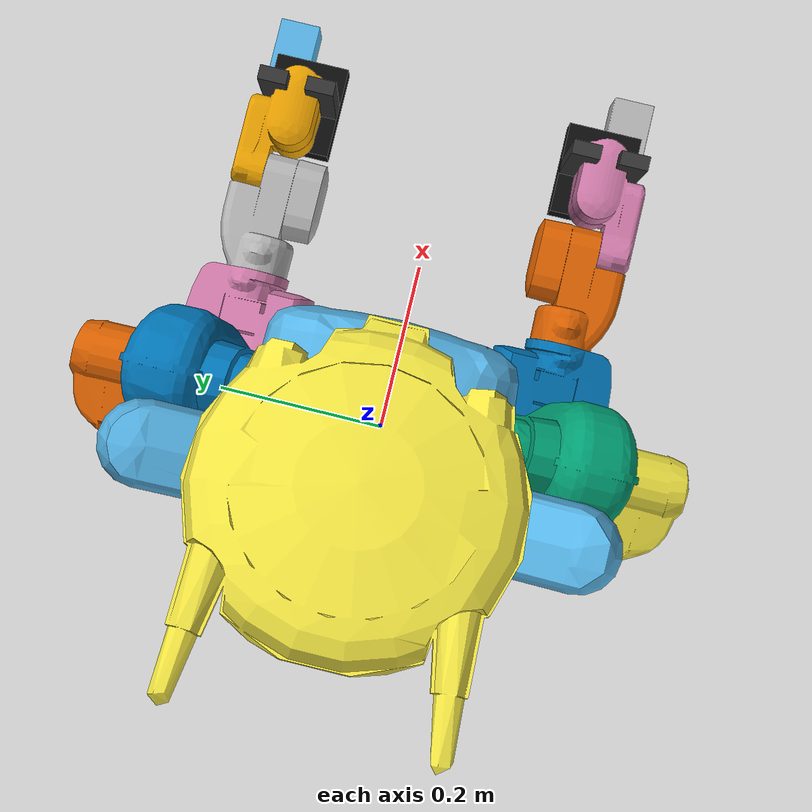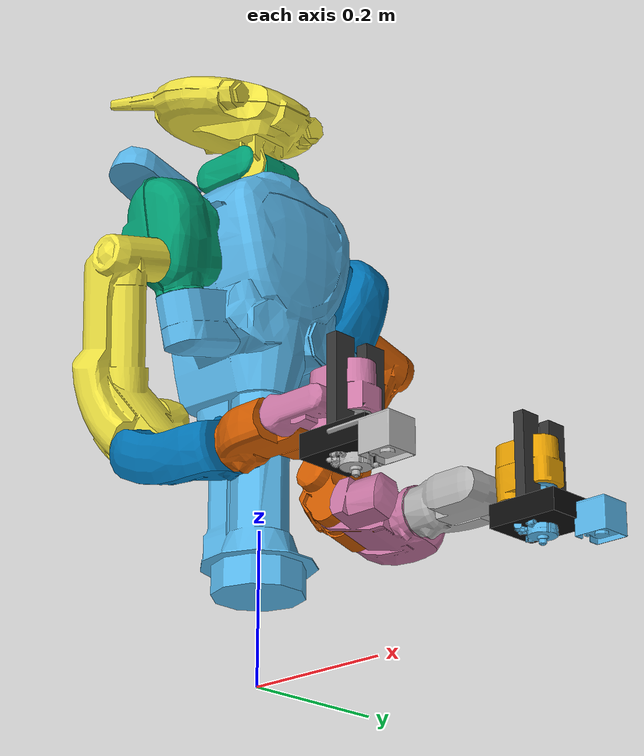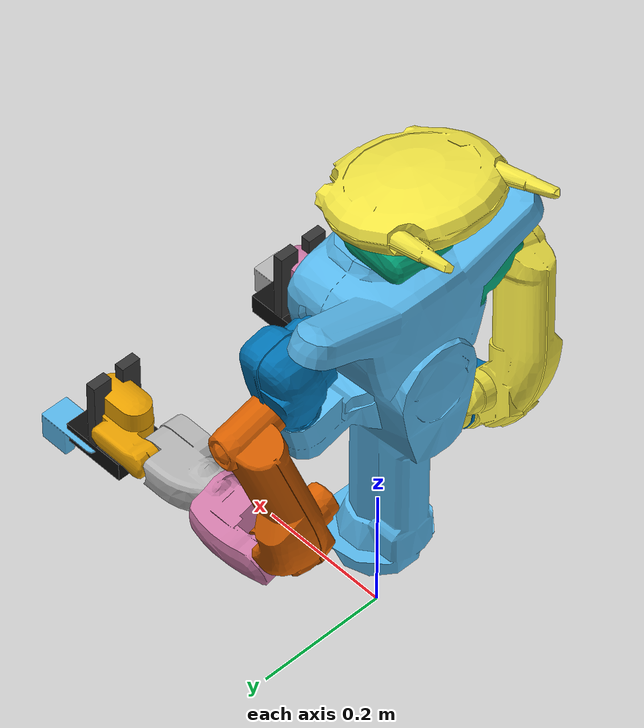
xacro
<?xml version="1.0"?>
<robot name="FillieOpen"
       xmlns:xacro="http://www.ros.org/wiki/xacro">

  <xacro:include filename="$(find nextage_fillie_open_description)/urdf/FillieOpen.urdf" />
  <xacro:include filename="$(find nextage_fillie_open_description)/urdf/nextage_fillie_open_gz_camera.xacro" />
  <xacro:include filename="$(find nextage_fillie_open_description)/urdf/robotiq_2f_140_gripper.xacro" />

  <!-- Add Robotiq 2F-140 Gripper to right arm -->
  <xacro:robotiq_gripper prefix="right" parent="RARM_JOINT5_Link">
    <origin xyz="0.0 0.0 0.0" rpy="0 0 0"/>
  </xacro:robotiq_gripper>

  <!-- Add Robotiq 2F-140 Gripper to left arm -->
  <xacro:robotiq_gripper prefix="left" parent="LARM_JOINT5_Link">
    <origin xyz="0.0 0.0 0.0" rpy="0 0 0"/>
  </xacro:robotiq_gripper>

</robot>

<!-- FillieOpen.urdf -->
<robot name="NEXTAGE"
			 xmlns:xi="http://www.w3.org/2001/xinclude"
			 xmlns:gazebo="http://playerstage.sourceforge.net/gazebo/xmlschema/#gz"
			 xmlns:model="http://playerstage.sourceforge.net/gazebo/xmlschema/#model"
			 xmlns:sensor="http://playerstage.sourceforge.net/gazebo/xmlschema/#sensor"
			 xmlns:body="http://playerstage.sourceforge.net/gazebo/xmlschema/#body"
			 xmlns:geom="http://playerstage.sourceforge.net/gazebo/xmlschema/#geom"
			 xmlns:joint="http://playerstage.sourceforge.net/gazebo/xmlschema/#joint"
			 xmlns:interface="http://playerstage.sourceforge.net/gazebo/xmlschema/#interface"
			 xmlns:rendering="http://playerstage.sourceforge.net/gazebo/xmlschema/#rendering"
			 xmlns:renderable="http://playerstage.sourceforge.net/gazebo/xmlschema/#renderable"
			 xmlns:controller="http://playerstage.sourceforge.net/gazebo/xmlschema/#controller"
			 xmlns:physics="http://playerstage.sourceforge.net/gazebo/xmlschema/#physics"
			 xmlns:xacro="http://www.ros.org/wiki/xacro">
	<xacro:include filename="$(find nextage_fillie_open_description)/urdf/materials.urdf.xacro" />

	<!-- Used for fixing robot to Gazebo 'base_link' -->
	<link name="world"/>
	<joint name="fixed" type="fixed">
		 <parent link="world"/>
		 <child link="CHEST_JOINT0_Link"/>
	</joint>

	<link name="CHEST_JOINT0_Link">
		<visual>
			<origin xyz="0 0 0" rpy="0 0 0"/>
			<geometry>
				<mesh filename="file://$(find nextage_fillie_open_description)/urdf/meshes/visual/CHEST_JOINT0_Link_mesh.obj"/>
			</geometry>
		</visual>
		<collision>
			<origin xyz="0 0 0" rpy="0 0 0"/>
			<geometry>
				<mesh filename="file://$(find nextage_fillie_open_description)/urdf/meshes/CHEST_JOINT0_Link_mesh.dae"/>
			</geometry>
		</collision>
			 <inertial>
			<mass value="5.719" />
			<origin xyz="0 0 0" rpy="0 -0 0"/>
			<inertia ixx="0.0639575" ixy="-0.00022833" ixz="0.00011172" iyy="0.0310845" iyz="6.48e-05" izz="0.0501107"/>
		</inertial>
	</link>

	<link name="HEAD_JOINT0_Link">
		<visual>
			<origin xyz="0 0 0" rpy="0 0 0"/>
			<geometry>
				<mesh filename="file://$(find nextage_fillie_open_description)/urdf/meshes/visual/HEAD_JOINT0_Link_mesh.obj"/>
			</geometry>
		</visual>
		<collision>
			<origin xyz="0 0 0" rpy="0 0 0"/>
			<geometry>
				<mesh filename="file://$(find nextage_fillie_open_description)/urdf/meshes/HEAD_JOINT0_Link_mesh.dae"/>
			</geometry>
		</collision>
		 <inertial>
			<mass value="0.317929" />
			<origin xyz="-2.292e-05 0.00547848 -0.00784016" rpy="0 -0 0"/>
			<inertia ixx="0.00027682" ixy="3e-08" ixz="-3.3e-07" iyy="0.00013009" iyz="-1.092e-05" izz="0.00020954"/>
		</inertial>
	</link>

	<link name="HEAD_JOINT1_Link">
		<visual>
			<origin xyz="0 0 0" rpy="0 0 0"/>
			<geometry>
				<mesh filename="file://$(find nextage_fillie_open_description)/urdf/meshes/visual/HEAD_JOINT1_Link_mesh.obj"/>
			</geometry>
		</visual>
		<collision>
			<origin xyz="0 0 0" rpy="0 0 0"/>
			<geometry>
				<mesh filename="file://$(find nextage_fillie_open_description)/urdf/meshes/HEAD_JOINT1_Link_mesh.dae"/>
			</geometry>
		</collision>
		<inertial>
			<mass value="0.0808593" />
			<inertia ixx="1e-3" ixy="0" ixz="0" iyy="1e-3" iyz="0" izz="1e-3"/>
		</inertial>
	</link>

	<link name="LARM_JOINT0_Link">
		<visual>
			<origin xyz="0 0 0" rpy="0 0 0"/>
			<geometry>
				<mesh filename="file://$(find nextage_fillie_open_description)/urdf/meshes/visual/LARM_JOINT0_Link_mesh.obj"/>
			</geometry>
		</visual>
		<collision>
			<origin xyz="0 0 0" rpy="0 0 0"/>
			<geometry>
				<mesh filename="file://$(find nextage_fillie_open_description)/urdf/meshes/LARM_JOINT0_Link_mesh.dae"/>
			</geometry>
		</collision>
			<inertial>
			<mass value="1.32626" />
			<origin xyz="-0.00226388 -0.00521383 0.0156081" rpy="0 -0 0"/>
			<inertia ixx="0.00207537" ixy="0.00011276" ixz="8.927e-05" iyy="0.00240295" iyz="-4.57e-05" izz="0.00141912"/>
		</inertial>
	</link>

	<link name="LARM_JOINT1_Link">
		<visual>
			<origin xyz="0 0 0" rpy="0 0 0"/>
			<geometry>
				<mesh filename="file://$(find nextage_fillie_open_description)/urdf/meshes/visual/LARM_JOINT1_Link_mesh.obj"/>
			</geometry>
		</visual>
		<collision>
			<origin xyz="0 0 0" rpy="0 0 0"/>
			<geometry>
				<mesh filename="file://$(find nextage_fillie_open_description)/urdf/meshes/LARM_JOINT1_Link_mesh.dae"/>
			</geometry>
		</collision>
		 <inertial>
			<mass value="1.14898" />
			<origin xyz="-5.236e-05 0.0583134 -0.107061" rpy="0 -0 0"/>
			<inertia ixx="0.0154168" ixy="9.95417e-07" ixz="3.38147e-06" iyy="0.0147117" iyz="0.00213719" izz="0.0012658"/>
		</inertial>
	</link>

	<link name="LARM_JOINT2_Link">
		<visual>
			<origin xyz="0 0 0" rpy="0 0 0"/>
			<geometry>
				<mesh filename="file://$(find nextage_fillie_open_description)/urdf/meshes/visual/LARM_JOINT2_Link_mesh.obj"/>
			</geometry>
		</visual>
		<collision>
			<origin xyz="0 0 0" rpy="0 0 0"/>
			<geometry>
				<mesh filename="file://$(find nextage_fillie_open_description)/urdf/meshes/LARM_JOINT2_Link_mesh.dae"/>
			</geometry>
		</collision>
			<inertial>
			<mass value="0.577518" />
			<origin xyz="-2.254e-05 0.00167107 -0.0715116" rpy="0 -0 0"/>
			<inertia ixx="0.00143966" ixy="-3e-07" ixz="1.2e-06" iyy="0.00141763" iyz="-7.596e-05" izz="0.0001972"/>
		</inertial>
	</link>

	<link name="LARM_JOINT3_Link">
		<visual>
			<origin xyz="0 0 0" rpy="0 0 0"/>
			<geometry>
				<mesh filename="file://$(find nextage_fillie_open_description)/urdf/meshes/visual/LARM_JOINT3_Link_mesh.obj"/>
			</geometry>
		</visual>
		<collision>
			<origin xyz="0 0 0" rpy="0 0 0"/>
			<geometry>
				<mesh filename="file://$(find nextage_fillie_open_description)/urdf/meshes/LARM_JOINT3_Link_mesh.dae"/>
			</geometry>
		</collision>
			<inertial>
			<mass value="0.457418" />
			<origin xyz="-1.788e-05 -0.00395812 -0.20273" rpy="0 -0 0"/>
			<inertia ixx="0.00069205" ixy="3e-08" ixz="5.2e-07" iyy="0.00068903" iyz="-1.915e-05" izz="0.00013509"/>
		</inertial>
	</link>

	<link name="LARM_JOINT4_Link">
		<visual>
			<origin xyz="0 0 0" rpy="0 0 0"/>
			<geometry>
				<mesh filename="file://$(find nextage_fillie_open_description)/urdf/meshes/visual/LARM_JOINT4_Link_mesh.obj"/>
			</geometry>
		</visual>
		<collision>
			<origin xyz="0 0 0" rpy="0 0 0"/>
			<geometry>
				<mesh filename="file://$(find nextage_fillie_open_description)/urdf/meshes/LARM_JOINT4_Link_mesh.dae"/>
			</geometry>
		</collision>
		<inertial>
			<mass value="0.418434" />
			<origin xyz="0.00243131 0.00379733 -0.0577036" rpy="0 -0 0"/>
			<inertia ixx="0.00052016" ixy="1.69e-06" ixz="7.9e-06" iyy="0.00050569" iyz="-5.377e-05" izz="0.00014004"/>
		</inertial>
	</link>

	<link name="LARM_JOINT5_Link">
		<visual>
			<origin xyz="0 0 0" rpy="0 0 0"/>
			<geometry>
				<mesh filename="file://$(find nextage_fillie_open_description)/urdf/meshes/visual/LARM_JOINT5_Link_mesh.obj"/>
			</geometry>
		</visual>
		<visual>
			<origin xyz="0 0 0" rpy="0 0 0"/>
			<geometry>
				<mesh filename="file://$(find nextage_fillie_open_description)/urdf/meshes/visual/L_CAM.obj"/>
			</geometry>
		</visual>
		<collision>
			<origin xyz="0 0 0" rpy="0 0 0"/>
			<geometry>
				<mesh filename="file://$(find nextage_fillie_open_description)/urdf/meshes/visual/LARM_JOINT5_Link_mesh.obj"/>
			</geometry>
		</collision>
		<collision>
			<origin xyz="0 0 0" rpy="0 0 0"/>
			<geometry>
				<mesh filename="file://$(find nextage_fillie_open_description)/urdf/meshes/L_CAM.dae"/>
			</geometry>
		</collision>
			<inertial>
			<mass value="1.05156" />
			<origin xyz="-0.048476 -3.2e-06 -0.0388988" rpy="0 -0 0"/>
			<inertia ixx="0.00194072" ixy="1.1e-07" ixz="-0.00042482" iyy="0.00209392" iyz="1.2e-07" izz="0.00035788"/>
		</inertial>
	</link>

	<link name="RARM_JOINT0_Link">
		<visual>
			<origin xyz="0 0 0" rpy="0 0 0"/>
			<geometry>
				<mesh filename="file://$(find nextage_fillie_open_description)/urdf/meshes/visual/RARM_JOINT0_Link_mesh.obj"/>
			</geometry>
		</visual>
		<collision>
			<origin xyz="0 0 0" rpy="0 0 0"/>
			<geometry>
				<mesh filename="file://$(find nextage_fillie_open_description)/urdf/meshes/RARM_JOINT0_Link_mesh.dae"/>
			</geometry>
		</collision>
			 <inertial>
			<mass value="1.32626" />
			<origin xyz="-0.00226388 0.00521383 0.0156081" rpy="0 -0 0"/>
			<inertia ixx="0.00207537" ixy="-0.00011276" ixz="8.927e-05" iyy="0.00240295" iyz="4.57e-05" izz="0.00141912"/>
		</inertial>
	</link>

	<link name="RARM_JOINT1_Link">
		<visual>
			<origin xyz="0 0 0" rpy="0 0 0"/>
			<geometry>
				<mesh filename="file://$(find nextage_fillie_open_description)/urdf/meshes/visual/RARM_JOINT1_Link_mesh.obj"/>
			</geometry>
		</visual>
		<collision>
			<origin xyz="0 0 0" rpy="0 0 0"/>
			<geometry>
				<mesh filename="file://$(find nextage_fillie_open_description)/urdf/meshes/RARM_JOINT1_Link_mesh.dae"/>
			</geometry>
		</collision>
		 <inertial>
			<mass value="1.14898" />
			<origin xyz="-5.236e-05 -0.0583134 -0.107061" rpy="0 -0 0"/>
			<inertia ixx="0.0154168" ixy="-9.95417e-07" ixz="3.38147e-06" iyy="0.0147117" iyz="-0.00213719" izz="0.0012658"/>
		</inertial>
	</link>

	<link name="RARM_JOINT2_Link">
		<visual>
			<origin xyz="0 0 0" rpy="0 0 0"/>
			<geometry>
				<mesh filename="file://$(find nextage_fillie_open_description)/urdf/meshes/RARM_JOINT2_Link_mesh.dae"/>
			</geometry>
		</visual>
		<collision>
			<origin xyz="0 0 0" rpy="0 0 0"/>
			<geometry>
				<mesh filename="file://$(find nextage_fillie_open_description)/urdf/meshes/RARM_JOINT2_Link_mesh.dae"/>
			</geometry>
		</collision>
		 <inertial>
			<mass value="0.577518" />
			<origin xyz="-2.254e-05 -0.00167107 -0.0715116" rpy="0 -0 0"/>
			<inertia ixx="0.00143966" ixy="3e-07" ixz="1.2e-06" iyy="0.00141763" iyz="7.596e-05" izz="0.0001972"/>
		</inertial>
	</link>

	<link name="RARM_JOINT3_Link">
		<visual>
			<origin xyz="0 0 0" rpy="0 0 0"/>
			<geometry>
				<mesh filename="file://$(find nextage_fillie_open_description)/urdf/meshes/visual/RARM_JOINT3_Link_mesh.obj"/>
			</geometry>
		</visual>
		<collision>
			<origin xyz="0 0 0" rpy="0 0 0"/>
			<geometry>
				<mesh filename="file://$(find nextage_fillie_open_description)/urdf/meshes/RARM_JOINT3_Link_mesh.dae"/>
			</geometry>
		</collision>
			<inertial>
			<mass value="0.457418" />
			<origin xyz="-1.788e-05 0.00395812 -0.20273" rpy="0 -0 0"/>
			<inertia ixx="0.00069205" ixy="-3e-08" ixz="5.2e-07" iyy="0.00068903" iyz="1.915e-05" izz="0.00013509"/>
		</inertial>
	</link>

	<link name="RARM_JOINT4_Link">
		<visual>
			<origin xyz="0 0 0" rpy="0 0 0"/>
			<geometry>
				<mesh filename="file://$(find nextage_fillie_open_description)/urdf/meshes/visual/RARM_JOINT4_Link_mesh.obj"/>
			</geometry>
		</visual>
		<collision>
			<origin xyz="0 0 0" rpy="0 0 0"/>
			<geometry>
				<mesh filename="file://$(find nextage_fillie_open_description)/urdf/meshes/RARM_JOINT4_Link_mesh.dae"/>
			</geometry>
		</collision>
		<inertial>
			<mass value="0.418434" />
			<origin xyz="0.00243131 -0.00379733 -0.0577036" rpy="0 -0 0"/>
			<inertia ixx="0.00052016" ixy="-1.69e-06" ixz="7.9e-06" iyy="0.00050569" iyz="5.377e-05" izz="0.00014004"/>
		</inertial>
	</link>

	<link name="RARM_JOINT5_Link">
		<visual>
			<origin xyz="0 0 0" rpy="0 0 0"/>
			<geometry>
				<mesh filename="file://$(find nextage_fillie_open_description)/urdf/meshes/visual/RARM_JOINT5_Link_mesh.obj"/>
			</geometry>
		</visual>
		<visual>
			<origin xyz="0 0 0" rpy="0 0 0"/>
			<geometry>
				<mesh filename="file://$(find nextage_fillie_open_description)/urdf/meshes/visual/R_CAM.obj"/>
			</geometry>
		</visual>
		<collision>
			<origin xyz="0 0 0" rpy="0 0 0"/>
			<geometry>
				<mesh filename="file://$(find nextage_fillie_open_description)/urdf/meshes/visual/RARM_JOINT5_Link_mesh.obj"/>
			</geometry>
		</collision>
		<collision>
			<origin xyz="0 0 0" rpy="0 0 0"/>
			<geometry>
				<mesh filename="file://$(find nextage_fillie_open_description)/urdf/meshes/R_CAM.dae"/>
			</geometry>
		</collision>
			<inertial>
			<mass value="1.05156" />
			<origin xyz="-0.048476 3.2e-06 -0.0388988" rpy="0 -0 0"/>
			<inertia ixx="0.00194072" ixy="-1.1e-07" ixz="-0.00042482" iyy="0.00209392" iyz="-1.2e-07" izz="0.00035788"/>
		</inertial>
	</link>

	<joint name="HEAD_JOINT0" type="fixed">
		<parent link="CHEST_JOINT0_Link"/>
		<child link="HEAD_JOINT0_Link"/>
		<origin xyz="0 0 0.705" rpy="0 0 0"/>
		<axis xyz="0 0 1"/>
		<limit lower="-1.570796327" upper="1.570796327" effort="100" velocity="1.0"/>
	</joint>

	<joint name="HEAD_JOINT1" type="fixed">
		<parent link="HEAD_JOINT0_Link"/>
		<child link="HEAD_JOINT1_Link"/>
		<origin xyz="0 0 0.0" rpy="0 0 0"/>
		<axis xyz="0 1 0"/>
		<limit lower="-0.401425728" upper="1.308996939" effort="100" velocity="1.0"/>
	</joint>

	<joint name="LARM_JOINT0" type="revolute">
		<parent link="CHEST_JOINT0_Link"/>
		<child link="LARM_JOINT0_Link"/>
		<origin xyz="0.0 0.155 0.520" rpy="-0.26179938779914941 0 0"/>
		<axis xyz="0 0 1"/>
		<limit lower="-1.570796327" upper="1.570796327" effort="150" velocity="1.0"/>
	</joint>

	<joint name="LARM_JOINT1" type="revolute">
		<parent link="LARM_JOINT0_Link"/>
		<child link="LARM_JOINT1_Link"/>
		<origin xyz="0 0.0 0.0" rpy="0 0 0"/>
		<axis xyz="0 1 0"/>
		<limit lower="-2.443460953" upper="1.570796327" effort="150" velocity="1.0"/>
	</joint>

	<joint name="LARM_JOINT2" type="revolute">
		<parent link="LARM_JOINT1_Link"/>
		<child link="LARM_JOINT2_Link"/>
		<origin xyz="0 0.083 -0.250" rpy="0 0 0"/>
		<axis xyz="0 1 0"/>
		<limit lower="-1.221730476" upper="1.570796327" effort="150" velocity="1.0"/>
	</joint>

	<joint name="LARM_JOINT3" type="revolute">
		<parent link="LARM_JOINT2_Link"/>
		<child link="LARM_JOINT3_Link"/>
		<origin xyz="0 0 -0.02" rpy="0.26179938779914941 0 0"/>
		<axis xyz="1 0 0"/>
		<limit lower="-3.141592654" upper="1.745329252" effort="150" velocity="1.0"/>
	</joint>

	<joint name="LARM_JOINT4" type="revolute">
		<parent link="LARM_JOINT3_Link"/>
		<child link="LARM_JOINT4_Link"/>
		<origin xyz="0.230 0 0" rpy="0 0 0"/>
		<axis xyz="0 1 0"/>
		<limit lower="-1.570796327" upper="1.570796327" effort="150" velocity="1.0"/>
	</joint>

	<joint name="LARM_JOINT5" type="revolute">
		<parent link="LARM_JOINT4_Link"/>
		<child link="LARM_JOINT5_Link"/>
		<origin xyz="0.090 0 -0.051" rpy="0 0 0"/>
		<axis xyz="0 0 1"/>
		<limit lower="-2.9670597283903604" upper="2.9670597283903604" effort="150" velocity="1.0"/>
	</joint>

	<joint name="RARM_JOINT0" type="revolute">
		<parent link="CHEST_JOINT0_Link"/>
		<child link="RARM_JOINT0_Link"/>
		<origin xyz="0.0 -0.155 0.520" rpy="0.26179938779914941 0 0"/>
		<axis xyz="0 0 1"/>
		<limit lower="-1.570796327" upper="1.570796327" effort="150" velocity="100.0"/>
	</joint>

	<joint name="RARM_JOINT1" type="revolute">
		<parent link="RARM_JOINT0_Link"/>
		<child link="RARM_JOINT1_Link"/>
		<origin xyz="0 0 0" rpy="0 0 0"/>
		<axis xyz="0 1 0"/>
		<limit lower="-2.443460953" upper="1.570796327" effort="150" velocity="100.0"/>
	</joint>

	<joint name="RARM_JOINT2" type="revolute">
		<parent link="RARM_JOINT1_Link"/>
		<child link="RARM_JOINT2_Link"/>
		<origin xyz="0 -0.083 -0.250" rpy="0 0 0"/>
		<axis xyz="0 1 0"/>
		<limit lower="-1.221730476" upper="1.570796327" effort="150" velocity="100.0"/>
	</joint>

	<joint name="RARM_JOINT3" type="revolute">
		<parent link="RARM_JOINT2_Link"/>
		<child link="RARM_JOINT3_Link"/>
		<origin xyz="0 0 -0.02" rpy="-0.26179938779914941 0 0"/>
		<axis xyz="1 0 0"/>
		<limit lower="-1.745329252" upper="3.141592654" effort="150" velocity="100.0"/>
	</joint>

	<joint name="RARM_JOINT4" type="revolute">
		<parent link="RARM_JOINT3_Link"/>
		<child link="RARM_JOINT4_Link"/>
		<origin xyz="0.230 0 0" rpy="0 0 0"/>
		<axis xyz="0 1 0"/>
		<limit lower="-1.570796327" upper="1.570796327" effort="150" velocity="100.0"/>
	</joint>

	<joint name="RARM_JOINT5" type="revolute">
		<parent link="RARM_JOINT4_Link"/>
		<child link="RARM_JOINT5_Link"/>
		<origin xyz="0.090 0 -0.051" rpy="0 0 0"/>
		<axis xyz="0 0 1"/>
		<limit lower="-2.9670597283903604" upper="2.9670597283903604" effort="150" velocity="100.0"/>
	</joint>

	<!-- Gazebo plugin for ROS Control -->

</robot>

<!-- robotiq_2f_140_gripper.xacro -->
<robot xmlns:xacro="http://www.ros.org/wiki/xacro">

  <xacro:macro name="robotiq_gripper" params="prefix parent *origin">

    <!-- Main Gripper Base Link -->
    <link name="${prefix}_gripper_link">
      <visual>
        <origin xyz="0.0 0.0 0.0" rpy="0.0 0.0 0.0" />
        <geometry>
          <box size="0.10 0.08 0.03"/>
        </geometry>
        <material name="black">
          <color rgba="0.05 0.05 0.05 1"/>
        </material>
      </visual>
      <collision>
        <origin xyz="0.0 0.0 0.0" rpy="0.0 0.0 0.0" />
        <geometry>
          <box size="0.10 0.08 0.03"/>
        </geometry>
      </collision>
      <inertial>
        <mass value="0.5"/>
        <origin xyz="0 0 0" rpy="0 0 0"/>
        <inertia ixx="0.001" ixy="0" ixz="0" iyy="0.001" iyz="0" izz="0.001"/>
      </inertial>
    </link>

    <joint name="${prefix}_gripper_base_joint" type="fixed">
      <xacro:insert_block name="origin"/>
      <parent link="${parent}"/>
      <child link="${prefix}_gripper_link"/>
    </joint>

    <!-- Left Finger -->
    <link name="${prefix}_left_finger">
      <visual>
        <origin xyz="0 0 0.055" rpy="0 0 0"/>
        <geometry>
          <box size="0.015 0.03 0.11"/>
        </geometry>
        <material name="dark_grey">
          <color rgba="0.2 0.2 0.2 1.0"/>
        </material>
      </visual>
      <collision>
        <origin xyz="0 0 0.055" rpy="0 0 0"/>
        <geometry>
          <box size="0.015 0.03 0.11"/>
        </geometry>
      </collision>
      <inertial>
        <mass value="0.1"/>
        <origin xyz="0 0 0.055" rpy="0 0 0"/>
        <inertia ixx="0.0001" ixy="0" ixz="0" iyy="0.0001" iyz="0" izz="0.00001"/>
      </inertial>
    </link>

    <!-- Gazebo friction properties for left finger -->
    <gazebo reference="${prefix}_left_finger">
      <mu1>100.0</mu1>
      <mu2>100.0</mu2>
      <kp>1e10</kp>
      <kd>1000</kd>
      <minDepth>0.001</minDepth>
      <maxContacts>20</maxContacts>
    </gazebo>

    <joint name="${prefix}_left_finger_joint" type="prismatic">
      <origin xyz="0 0.025 0.015" rpy="0 0 0"/>
      <parent link="${prefix}_gripper_link"/>
      <child link="${prefix}_left_finger"/>
      <axis xyz="0 1 0"/>
      <limit lower="0.0" upper="0.07" effort="300" velocity="0.5"/>
      <dynamics damping="20.0" friction="2.0"/>
    </joint>

    <!-- Right Finger -->
    <link name="${prefix}_right_finger">
      <visual>
        <origin xyz="0 0 0.055" rpy="0 0 0"/>
        <geometry>
          <box size="0.015 0.03 0.11"/>
        </geometry>
        <material name="dark_grey">
          <color rgba="0.2 0.2 0.2 1.0"/>
        </material>
      </visual>
      <collision>
        <origin xyz="0 0 0.055" rpy="0 0 0"/>
        <geometry>
          <box size="0.015 0.03 0.11"/>
        </geometry>
      </collision>
      <inertial>
        <mass value="0.1"/>
        <origin xyz="0 0 0.055" rpy="0 0 0"/>
        <inertia ixx="0.0001" ixy="0" ixz="0" iyy="0.0001" iyz="0" izz="0.00001"/>
      </inertial>
    </link>

    <!-- Gazebo friction properties for right finger -->
    <gazebo reference="${prefix}_right_finger">
      <mu1>100.0</mu1>
      <mu2>100.0</mu2>
      <kp>1e10</kp>
      <kd>1000</kd>
      <minDepth>0.001</minDepth>
      <maxContacts>20</maxContacts>
    </gazebo>

    <joint name="${prefix}_right_finger_joint" type="prismatic">
      <origin xyz="0 -0.025 0.015" rpy="0 0 0"/>
      <parent link="${prefix}_gripper_link"/>
      <child link="${prefix}_right_finger"/>
      <axis xyz="0 1 0"/>
      <limit lower="-0.07" upper="0.0" effort="300" velocity="0.5"/>
      <dynamics damping="20.0" friction="2.0"/>
      <mimic joint="${prefix}_left_finger_joint" multiplier="-1" offset="0"/>
    </joint>

    <!-- Gripper Tool Center Point (TCP) -->
    <link name="${prefix}_gripper_tcp"/>

    <joint name="${prefix}_gripper_tcp_joint" type="fixed">
      <origin xyz="0 0 0.13" rpy="0 0 0"/>
      <parent link="${prefix}_gripper_link"/>
      <child link="${prefix}_gripper_tcp"/>
    </joint>

  </xacro:macro>

</robot>
